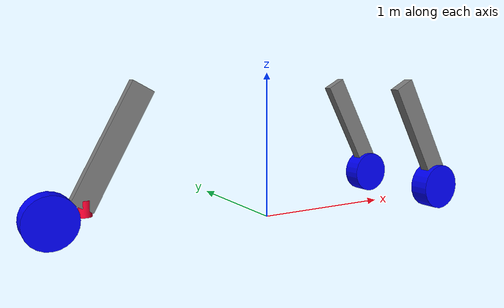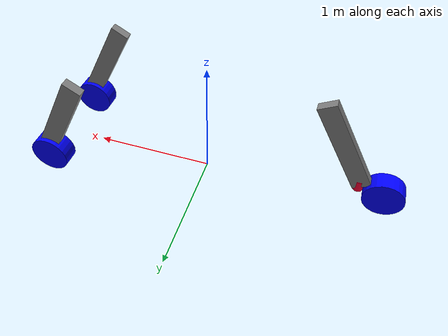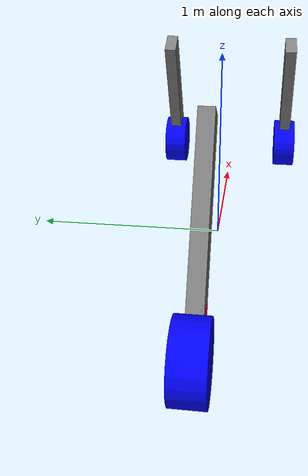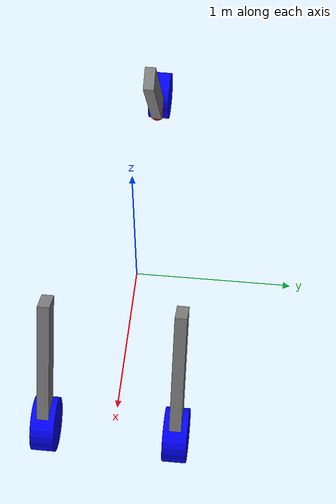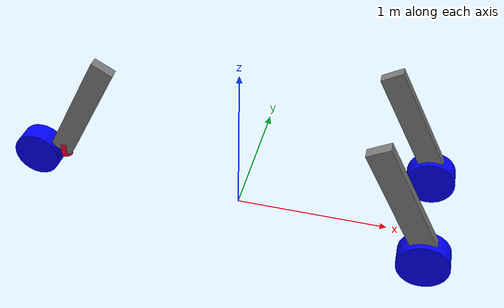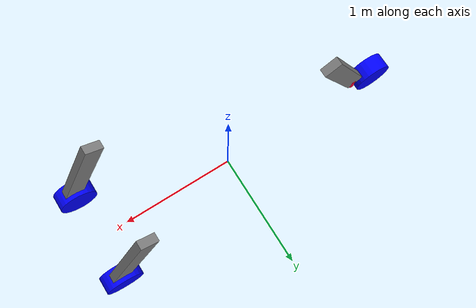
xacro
<?xml version="1.0"?>
<robot name="alunka_robot" xmlns:xacro="http://www.ros.org/wiki/xacro">

    <xacro:include filename="common_properties.xacro" />
    <xacro:include filename="mobile_robot.xacro" />

</robot>

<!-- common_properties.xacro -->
<robot xmlns:xacro="http://www.ros.org/wiki/xacro">

    <material name="grey">
        <color rgba="0.5 0.5 0.5 1" />
    </material>

    <material name="green">
        <color rgba="0 0.5 0 1" />
    </material>

    <material name="blue">
        <color rgba="0 0 1 1" />
    </material>

    <material name="yellow">
        <color rgba="0.5 0.5 0 1" />
    </material>

    <material name="orange">
        <color rgba="1 0.5 0 0.5" />
    </material>

    <material name="red">
        <color rgba="1 0 0.2 1" />
    </material>

    <material name="black">
        <color rgba="0 0 0 1" />
    </material>

    <xacro:macro name="box_inertia" params="mass l w h xyz rpy">
        <inertial>
            <origin xyz="${xyz}" rpy="0 0 0" />
            <mass value="${mass}" />
            <inertia ixx="${mass/12 * (h*h + l*l)}" ixy="0" ixz="0"
                     iyy="${mass/12 * (w*w + l*l)}" iyz="0"
                     izz="${mass/12 * (h*h + w*w)}" />
        </inertial>
    </xacro:macro>

    <xacro:macro name="cylinder_inertia" params="mass l r xyz rpy">
        <inertial>
            <origin xyz="${xyz}" rpy="${rpy}" />
            <mass value="${mass}" />
            <inertia ixx="${mass/12 * (3*r*r + l*l)}" ixy="0" ixz="0"
                     iyy="${mass/12 * (3*r*r + l*l)}" iyz="0"
                     izz="${mass/2 * (r*r)}" />
        </inertial>
    </xacro:macro>

</robot>

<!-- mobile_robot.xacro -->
<robot xmlns:xacro="http://www.ros.org/wiki/xacro">

    <xacro:property name="wheel_radius" value="0.16" />
    <xacro:property name="wheel_lenght" value="0.14" />
    <xacro:property name="hinge_radius" value="0.04" />
    <xacro:property name="hinge_lenght" value="0.1" />

    <xacro:property name="mobile_l" value="1.8" />
    <xacro:property name="mobile_w" value="0.85" />
    <xacro:property name="mobile_h" value="0.15" />
    <xacro:property name="mobile_xyz" value="0 0 0" />
    <xacro:property name="wheel_rpy" value="${pi / 2.0} 0 0" />
    <xacro:property name="hinge_rpy" value="0 0 0" />

    <xacro:property name="leg_l" value="0.15" />
    <xacro:property name="leg_w" value="0.08" />
    <xacro:property name="leg_h" value="0.7" />
    <xacro:property name="leg_angle" value="0.5" />
    <xacro:property name="leg_visual_adding" value="0.1" />

    <!-- @@@@@@@@@@@@@@@@          Functions                @@@@@@@@@@@@@@@@ -->

    <xacro:macro name="create_wheel_link" params="prefix">

    <link name="${prefix}_wheel_link">
        <visual>
            <geometry>
                <cylinder radius="${wheel_radius}" length="${wheel_lenght}" />
            </geometry>
            <origin xyz="0 0 0" rpy="${wheel_rpy}" />
            <material name="blue" />
        </visual>
        <collision>
            <geometry>
                <cylinder radius="${wheel_radius}" length="${wheel_lenght}" />
            </geometry>
            <origin xyz="0 0 0" rpy="${wheel_rpy}" />
        </collision>
        <xacro:cylinder_inertia mass="3.0" l="${2*wheel_lenght}" r="${2*wheel_radius}" xyz="0 0 0" rpy="${wheel_rpy}" />
    </link>

    </xacro:macro>

    <!-- hinge -->

    <xacro:macro name="create_hinge_link" params="prefix">

    <link name="${prefix}_hinge_link">
        <visual>
            <geometry>
                <cylinder radius="${hinge_radius}" length="${hinge_lenght}" />
            </geometry>
            <origin xyz="0 0 ${hinge_lenght/2}" rpy="${hinge_rpy}" />
            <material name="red" />
        </visual>
        <collision>
            <geometry>
                <cylinder radius="${hinge_radius}" length="${hinge_lenght}" />
            </geometry>
            <origin xyz="0 0 ${hinge_lenght/2}" rpy="${hinge_rpy}" />
        </collision>
        <xacro:cylinder_inertia mass="1.5" l="${2*hinge_lenght}" r="${2*hinge_radius}" xyz="0 0 ${hinge_lenght/2}" rpy="${hinge_rpy}" />
    </link>

    </xacro:macro>

    <!-- leg link creation func -->

    <xacro:macro name="create_leg_link" params="prefix xyz rpy">

    <link name="${prefix}_leg_link">
        <visual>
            <geometry>
                <box size="${leg_l} ${leg_w - 0.01} ${leg_h + leg_visual_adding}" />
            </geometry>
            <origin xyz="${xyz}" rpy="${rpy}" />
            <material name="grey" />
        </visual>
        <collision>
            <geometry>
                <box size="${leg_l} ${leg_w} ${leg_h}" />
            </geometry>
            <origin xyz="${xyz}" rpy="${rpy}" />
        </collision>
        <xacro:box_inertia mass="1.5" l="${2*leg_l}" w="${2*leg_w}" h="${2*leg_h}" xyz="${xyz}" rpy="${rpy}" />
    </link>

    </xacro:macro>

    <!-- @@@@@@@@@@@@@@@@          Robot Creation                @@@@@@@@@@@@@@@@ -->

    <!-- Body -->

    <link name="mobile_base_footprint" />

    <link name="mobile_base_link"> <!-- Base link visual, collision and inertia exists in balance robot -->
    </link>

    <joint name="footprint_joint" type="fixed">
        <parent link="mobile_base_footprint" />
        <child link="mobile_base_link" />
        <origin xyz="0 0 ${(mobile_h / 2) + wheel_radius + hinge_lenght + leg_h*cos(leg_angle)}" rpy="0 0 0" />
    </joint>

    <!-- legs creations -->

    <xacro:create_leg_link prefix="rear" xyz="${-(leg_h*sin(leg_angle)/2)} 0 ${-leg_h*cos(leg_angle)/2}" rpy="0 ${leg_angle} 0" />

    <joint name="rear_leg_joint" type="fixed">
        <parent link="mobile_base_link" />
        <child link="rear_leg_link" />
        <origin xyz="${-(mobile_l / 2)} 0 ${-(mobile_h / 2)}" rpy="0 0 0" />
    </joint>

    <xacro:create_leg_link prefix="left" xyz="${leg_h*sin(leg_angle)/2} 0 ${-leg_h*cos(leg_angle)/2}" rpy="0 ${-leg_angle} 0" />

    <joint name="left_leg_joint" type="fixed">
        <parent link="mobile_base_link" />
        <child link="left_leg_link" />
        <origin xyz="${(mobile_l / 2)} ${mobile_w/2 - leg_w/2} ${-(mobile_h / 2)}" rpy="0 0 0" />
    </joint>

    <xacro:create_leg_link prefix="right" xyz="${leg_h*sin(leg_angle)/2} 0 ${-leg_h*cos(leg_angle)/2}" rpy="0 ${-leg_angle} 0" />

    <joint name="right_leg_joint" type="fixed">
        <parent link="mobile_base_link" />
        <child link="right_leg_link" />
        <origin xyz="${(mobile_l / 2)} ${-mobile_w/2 + leg_w/2} ${-(mobile_h / 2)}" rpy="0 0 0" />
    </joint>

    <!-- Hinges creation -->

    <xacro:create_hinge_link prefix="rear" />

    <joint name="rear_hinge_joint" type="continuous">
        <parent link="rear_leg_link" />
        <child link="rear_hinge_link" />
        <origin xyz="${-(leg_h*sin(leg_angle))} 0 ${-leg_h*cos(leg_angle) - hinge_lenght}" rpy="0 0 0" />
        <axis xyz="0 0 1" />
    </joint>

    <xacro:create_hinge_link prefix="left" />

    <joint name="left_hinge_joint" type="revolute">
        <parent link="left_leg_link" />
        <child link="left_hinge_link" />
        <origin xyz="${leg_h*sin(leg_angle)} 0 ${-leg_h*cos(leg_angle) - hinge_lenght}" rpy="0 0 0" />
        <axis xyz="0 0 1" />
        <limit lower="-0.6458" upper="0.6458" effort="100.0" velocity="100.0" />  <!-- values (lower & upper) taken from gazebo plugin for ackerman drive -->
    </joint> <!-- might want to change the limit in order to be able to make a rotation in place -->

    <xacro:create_hinge_link prefix="right" />

    <joint name="right_hinge_joint" type="revolute">
        <parent link="right_leg_link" />
        <child link="right_hinge_link" />
        <origin xyz="${leg_h*sin(leg_angle)} 0 ${-leg_h*cos(leg_angle) - hinge_lenght}" rpy="0 0 0" />
        <axis xyz="0 0 1" />
        <limit lower="-0.6458" upper="0.6458" effort="100.0" velocity="100.0" />  <!-- values (lower & upper) taken from gazebo plugin for ackerman drive -->
    </joint>

    <!-- Wheels creation -->

    <xacro:create_wheel_link prefix="rear" />

    <joint name="rear_wheel_joint" type="continuous">
        <parent link="rear_hinge_link" />
        <child link="rear_wheel_link" />
        <origin xyz="${-(hinge_radius + wheel_radius)} 0 0" rpy="0 0 0" />
        <axis xyz="0 1 0" />
    </joint>

    <xacro:create_wheel_link prefix="left" />

    <joint name="left_wheel_joint" type="continuous">
        <parent link="left_hinge_link" />
        <child link="left_wheel_link" />
        <origin xyz="0 0 0" rpy="0 0 0" /> <!-- xyz="${-(hinge_radius + wheel_radius)} 0 0 " -->
        <axis xyz="0 1 0" />
    </joint>

    <xacro:create_wheel_link prefix="right" />

    <joint name="right_wheel_joint" type="continuous">
        <parent link="right_hinge_link" />
        <child link="right_wheel_link" />
        <origin xyz="0 0 0" rpy="0 0 0" />
        <axis xyz="0 1 0" />
    </joint>

    <!-- camera -->

    <!--               camera for sensors                -->

    <!-- these values have to be these values otherwise the gazebo camera
        image won't be aligned properly with the frame it is supposedly
        originating from -->

    <!--   Lidar        -->

</robot>
